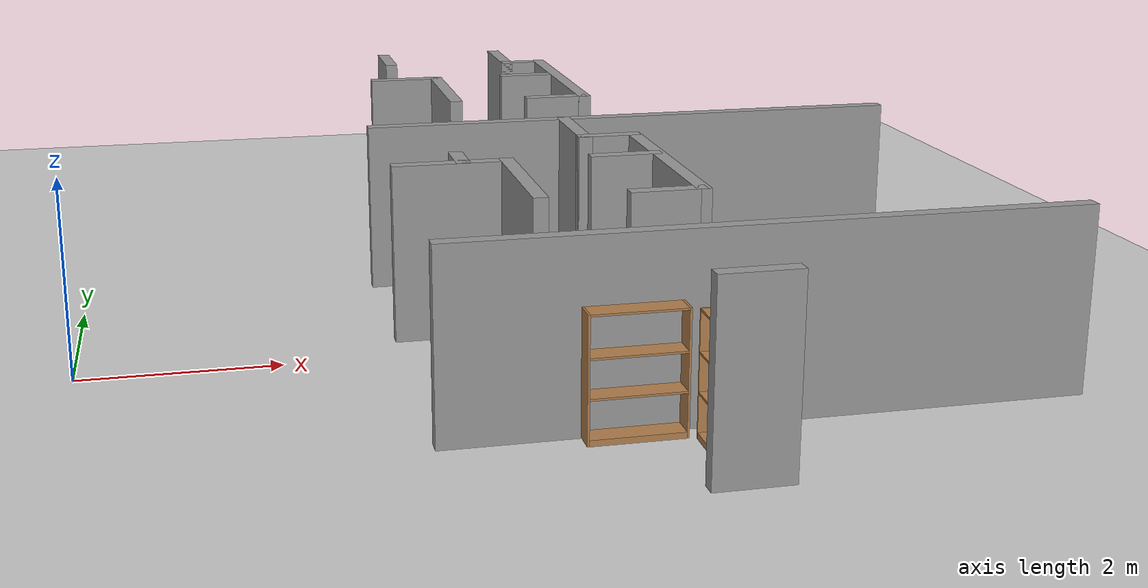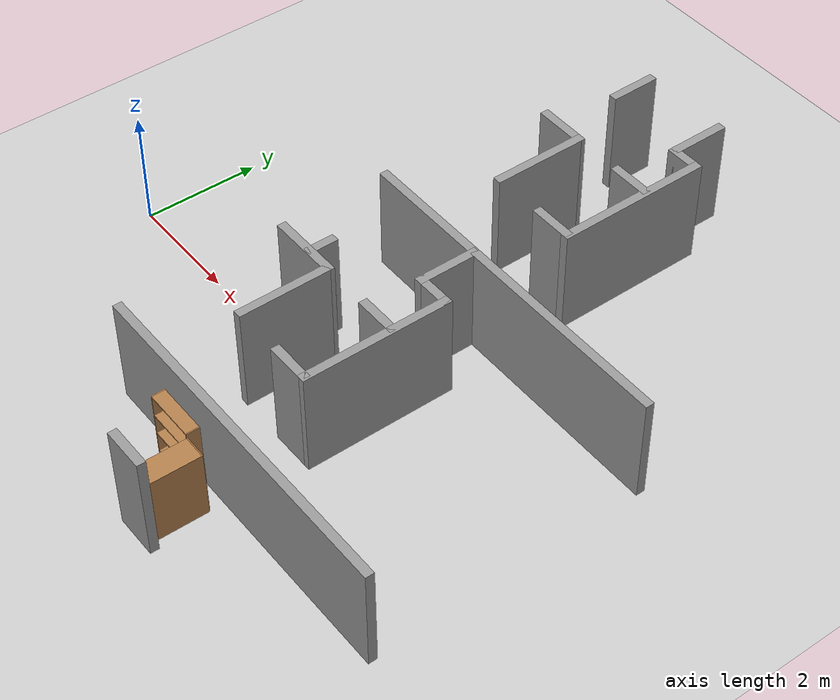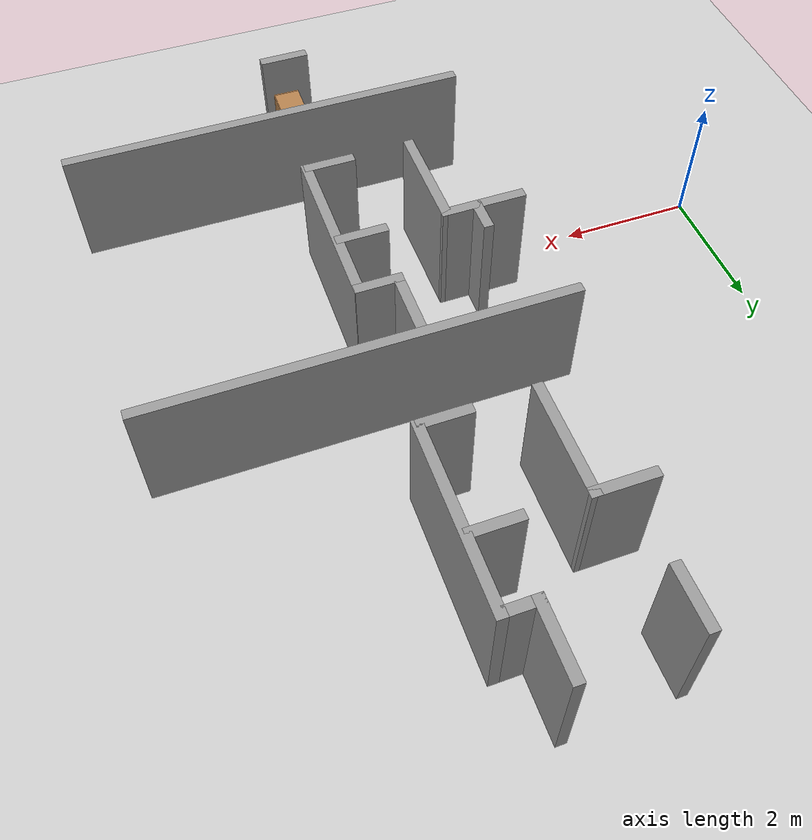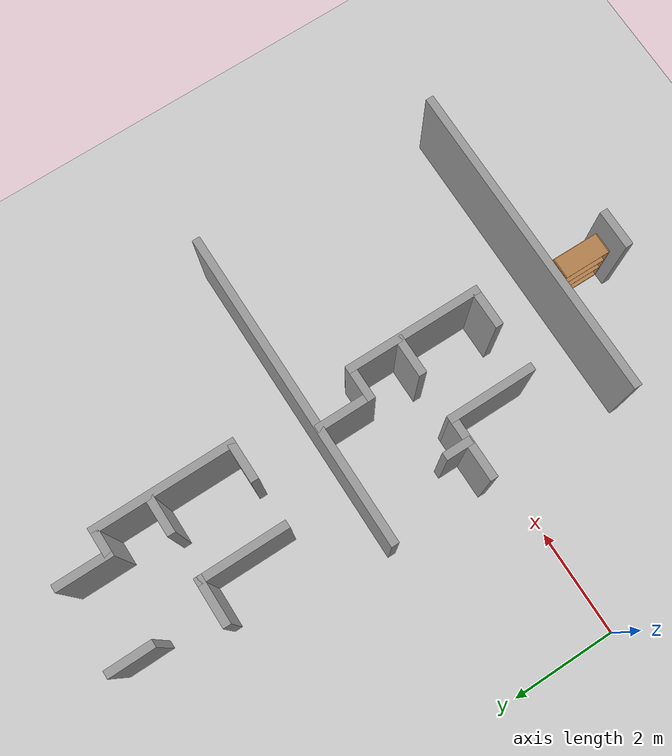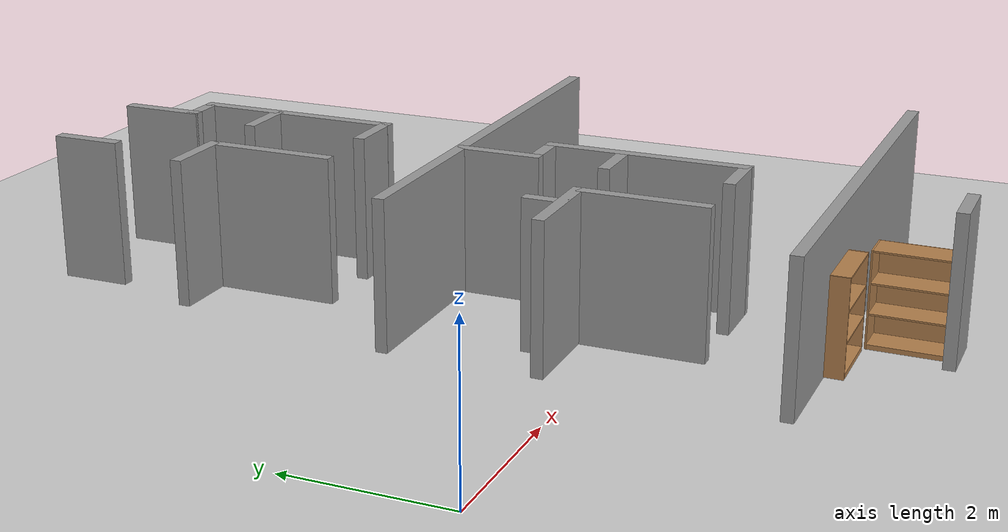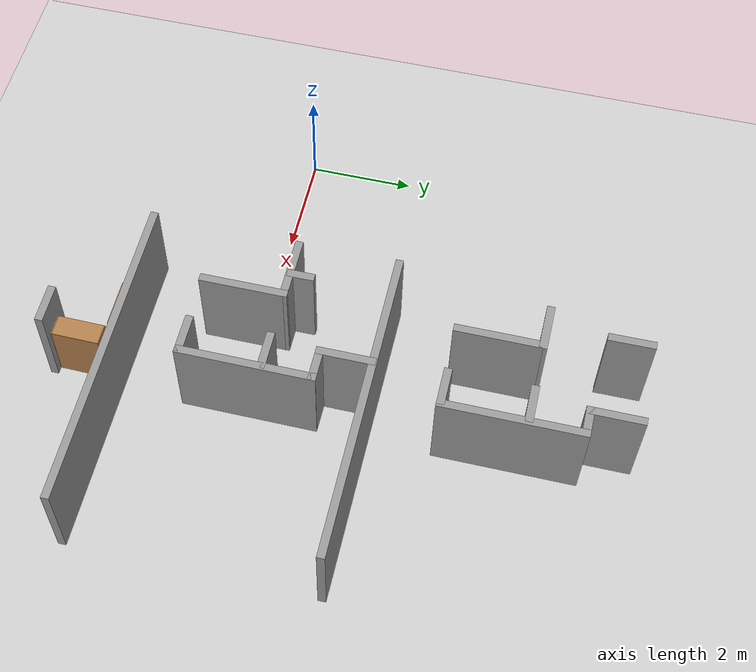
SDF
<sdf version="1.7">
 <world name="default">
  <model name="bookshelf">
   <static>1</static>
   <link name="link">
    <inertial><mass>1</mass></inertial>
    <collision name="back">
     <pose>0 0.005 0.6 0 -0 0</pose>
     <geometry><box><size>0.9 0.01 1.2</size></box></geometry>
    </collision>
    <visual name="visual1">
     <pose>0 0.005 0.6 0 -0 0</pose>
     <geometry><box><size>0.9 0.01 1.2</size></box></geometry>
     <material>
      <script><uri>file://media/materials/scripts/gazebo.material</uri><name>Gazebo/Wood</name></script>
     </material>
    </visual>
    <collision name="left_side">
     <pose>0.45 -0.195 0.6 0 -0 0</pose>
     <geometry><box><size>0.02 0.4 1.2</size></box></geometry>
    </collision>
    <visual name="visual2">
     <pose>0.45 -0.195 0.6 0 -0 0</pose>
     <geometry><box><size>0.02 0.4 1.2</size></box></geometry>
     <material>
      <script><uri>file://media/materials/scripts/gazebo.material</uri><name>Gazebo/Wood</name></script>
     </material>
    </visual>
    <collision name="right_side">
     <pose>-0.45 -0.195 0.6 0 -0 0</pose>
     <geometry><box><size>0.02 0.4 1.2</size></box></geometry>
    </collision>
    <visual name="visual3">
     <pose>-0.45 -0.195 0.6 0 -0 0</pose>
     <geometry><box><size>0.02 0.4 1.2</size></box></geometry>
     <material>
      <script><uri>file://media/materials/scripts/gazebo.material</uri><name>Gazebo/Wood</name></script>
     </material>
    </visual>
    <collision name="bottom">
     <pose>0 -0.195 0.03 0 -0 0</pose>
     <geometry><box><size>0.88 0.4 0.06</size></box></geometry>
    </collision>
    <visual name="visual4">
     <pose>0 -0.195 0.03 0 -0 0</pose>
     <geometry><box><size>0.88 0.4 0.06</size></box></geometry>
     <material>
      <script><uri>file://media/materials/scripts/gazebo.material</uri><name>Gazebo/Wood</name></script>
     </material>
    </visual>
    <collision name="top">
     <pose>0 -0.195 1.19 0 -0 0</pose>
     <geometry><box><size>0.88 0.4 0.02</size></box></geometry>
    </collision>
    <visual name="visual5">
     <pose>0 -0.195 1.19 0 -0 0</pose>
     <geometry><box><size>0.88 0.4 0.02</size></box></geometry>
     <material>
      <script><uri>file://media/materials/scripts/gazebo.material</uri><name>Gazebo/Wood</name></script>
     </material>
    </visual>
    <collision name="low_shelf">
     <pose>0 -0.195 0.43 0 -0 0</pose>
     <geometry><box><size>0.88 0.4 0.02</size></box></geometry>
    </collision>
    <visual name="visual6">
     <pose>0 -0.195 0.43 0 -0 0</pose>
     <geometry><box><size>0.88 0.4 0.02</size></box></geometry>
     <material>
      <script><uri>file://media/materials/scripts/gazebo.material</uri><name>Gazebo/Wood</name></script>
     </material>
    </visual>
    <collision name="high_shelf">
     <pose>0 -0.195 0.8 0 -0 0</pose>
     <geometry><box><size>0.88 0.4 0.02</size></box></geometry>
    </collision>
    <visual name="visual7">
     <pose>0 -0.195 0.8 0 -0 0</pose>
     <geometry><box><size>0.88 0.4 0.02</size></box></geometry>
     <material>
      <script><uri>file://media/materials/scripts/gazebo.material</uri><name>Gazebo/Wood</name></script>
     </material>
    </visual>
   </link>
   <pose>5.80085 -3.089 0 0 0 -1.58126</pose>
  </model>
  <model name="bookshelf_0">
   <link name="link">
    <inertial>
     <mass>0.599067</mass>
     <inertia>
      <ixx>0.00274522</ixx>
      <ixy>0</ixy>
      <ixz>0</ixz>
      <iyy>0.0386797</iyy>
      <iyz>0</iyz>
      <izz>0.041385</izz>
     </inertia>
    </inertial>
    <visual name="visual1">
     <pose>0 0.005 0.6 0 -0 0</pose>
     <geometry><box><size>0.9 0.006791 1.2</size></box></geometry>
     <material>
      <script><uri>file://media/materials/scripts/gazebo.material</uri><name>Gazebo/Wood</name></script>
      <shader type="pixel"/>
     </material>
    </visual>
    <visual name="visual2">
     <pose>0.45 -0.195 0.6 0 -0 0</pose>
     <geometry><box><size>0.02 0.233645 1.2</size></box></geometry>
     <material>
      <script><uri>file://media/materials/scripts/gazebo.material</uri><name>Gazebo/Wood</name></script>
      <shader type="pixel"/>
     </material>
    </visual>
    <visual name="visual3">
     <pose>-0.45 -0.195 0.6 0 -0 0</pose>
     <geometry><box><size>0.02 0.233645 1.2</size></box></geometry>
     <material>
      <script><uri>file://media/materials/scripts/gazebo.material</uri><name>Gazebo/Wood</name></script>
      <shader type="pixel"/>
     </material>
    </visual>
    <visual name="visual4">
     <pose>0 -0.195 0.03 0 -0 0</pose>
     <geometry><box><size>0.88 0.233645 0.06</size></box></geometry>
     <material>
      <script><uri>file://media/materials/scripts/gazebo.material</uri><name>Gazebo/Wood</name></script>
      <shader type="pixel"/>
     </material>
    </visual>
    <visual name="visual5">
     <pose>0 -0.195 1.19 0 -0 0</pose>
     <geometry><box><size>0.88 0.233645 0.02</size></box></geometry>
     <material>
      <script><uri>file://media/materials/scripts/gazebo.material</uri><name>Gazebo/Wood</name></script>
      <shader type="pixel"/>
     </material>
    </visual>
    <visual name="visual6">
     <pose>0 -0.195 0.43 0 -0 0</pose>
     <geometry><box><size>0.88 0.233645 0.02</size></box></geometry>
     <material>
      <script><uri>file://media/materials/scripts/gazebo.material</uri><name>Gazebo/Wood</name></script>
      <shader type="pixel"/>
     </material>
    </visual>
    <visual name="visual7">
     <pose>0 -0.195 0.8 0 -0 0</pose>
     <geometry><box><size>0.88 0.233645 0.02</size></box></geometry>
     <material>
      <script><uri>file://media/materials/scripts/gazebo.material</uri><name>Gazebo/Wood</name></script>
      <shader type="pixel"/>
     </material>
    </visual>
    <collision name="back">
     <pose>0 0.005 0.6 0 -0 0</pose>
     <geometry><box><size>0.9 0.006791 1.2</size></box></geometry>
     <surface>
      <friction>
       <ode><mu>1</mu><mu2>1</mu2><fdir1>0 0 0</fdir1><slip1>0</slip1><slip2>0</slip2></ode>
       <torsional>
        <coefficient>1</coefficient>
        <patch_radius>0</patch_radius>
        <surface_radius>0</surface_radius>
        <use_patch_radius>1</use_patch_radius>
        <ode><slip>0</slip></ode>
       </torsional>
      </friction>
      <bounce><restitution_coefficient>0</restitution_coefficient><threshold>1e+06</threshold></bounce>
      <contact>
       <collide_without_contact>0</collide_without_contact>
       <collide_without_contact_bitmask>1</collide_without_contact_bitmask>
       <collide_bitmask>1</collide_bitmask>
       <ode>
        <soft_cfm>0</soft_cfm>
        <soft_erp>0.2</soft_erp>
        <kp>1e+13</kp>
        <kd>1</kd>
        <max_vel>0.01</max_vel>
        <min_depth>0</min_depth>
       </ode>
       <bullet>
        <split_impulse>1</split_impulse>
        <split_impulse_penetration_threshold>-0.01</split_impulse_penetration_threshold>
        <soft_cfm>0</soft_cfm>
        <soft_erp>0.2</soft_erp>
        <kp>1e+13</kp>
        <kd>1</kd>
       </bullet>
      </contact>
     </surface>
    </collision>
    <collision name="left_side">
     <pose>0.45 -0.195 0.6 0 -0 0</pose>
     <geometry><box><size>0.02 0.233645 1.2</size></box></geometry>
     <surface>
      <friction>
       <ode><mu>1</mu><mu2>1</mu2><fdir1>0 0 0</fdir1><slip1>0</slip1><slip2>0</slip2></ode>
       <torsional>
        <coefficient>1</coefficient>
        <patch_radius>0</patch_radius>
        <surface_radius>0</surface_radius>
        <use_patch_radius>1</use_patch_radius>
        <ode><slip>0</slip></ode>
       </torsional>
      </friction>
      <bounce><restitution_coefficient>0</restitution_coefficient><threshold>1e+06</threshold></bounce>
      <contact>
       <collide_without_contact>0</collide_without_contact>
       <collide_without_contact_bitmask>1</collide_without_contact_bitmask>
       <collide_bitmask>1</collide_bitmask>
       <ode>
        <soft_cfm>0</soft_cfm>
        <soft_erp>0.2</soft_erp>
        <kp>1e+13</kp>
        <kd>1</kd>
        <max_vel>0.01</max_vel>
        <min_depth>0</min_depth>
       </ode>
       <bullet>
        <split_impulse>1</split_impulse>
        <split_impulse_penetration_threshold>-0.01</split_impulse_penetration_threshold>
        <soft_cfm>0</soft_cfm>
        <soft_erp>0.2</soft_erp>
        <kp>1e+13</kp>
        <kd>1</kd>
       </bullet>
      </contact>
     </surface>
    </collision>
    <collision name="right_side">
     <pose>-0.45 -0.195 0.6 0 -0 0</pose>
     <geometry><box><size>0.02 0.233645 1.2</size></box></geometry>
     <surface>
      <friction>
       <ode><mu>1</mu><mu2>1</mu2><fdir1>0 0 0</fdir1><slip1>0</slip1><slip2>0</slip2></ode>
       <torsional>
        <coefficient>1</coefficient>
        <patch_radius>0</patch_radius>
        <surface_radius>0</surface_radius>
        <use_patch_radius>1</use_patch_radius>
        <ode><slip>0</slip></ode>
       </torsional>
      </friction>
      <bounce><restitution_coefficient>0</restitution_coefficient><threshold>1e+06</threshold></bounce>
      <contact>
       <collide_without_contact>0</collide_without_contact>
       <collide_without_contact_bitmask>1</collide_without_contact_bitmask>
       <collide_bitmask>1</collide_bitmask>
       <ode>
        <soft_cfm>0</soft_cfm>
        <soft_erp>0.2</soft_erp>
        <kp>1e+13</kp>
        <kd>1</kd>
        <max_vel>0.01</max_vel>
        <min_depth>0</min_depth>
       </ode>
       <bullet>
        <split_impulse>1</split_impulse>
        <split_impulse_penetration_threshold>-0.01</split_impulse_penetration_threshold>
        <soft_cfm>0</soft_cfm>
        <soft_erp>0.2</soft_erp>
        <kp>1e+13</kp>
        <kd>1</kd>
       </bullet>
      </contact>
     </surface>
    </collision>
    <collision name="bottom">
     <pose>0 -0.195 0.03 0 -0 0</pose>
     <geometry><box><size>0.88 0.233645 0.06</size></box></geometry>
     <surface>
      <friction>
       <ode><mu>1</mu><mu2>1</mu2><fdir1>0 0 0</fdir1><slip1>0</slip1><slip2>0</slip2></ode>
       <torsional>
        <coefficient>1</coefficient>
        <patch_radius>0</patch_radius>
        <surface_radius>0</surface_radius>
        <use_patch_radius>1</use_patch_radius>
        <ode><slip>0</slip></ode>
       </torsional>
      </friction>
      <bounce><restitution_coefficient>0</restitution_coefficient><threshold>1e+06</threshold></bounce>
      <contact>
       <collide_without_contact>0</collide_without_contact>
       <collide_without_contact_bitmask>1</collide_without_contact_bitmask>
       <collide_bitmask>1</collide_bitmask>
       <ode>
        <soft_cfm>0</soft_cfm>
        <soft_erp>0.2</soft_erp>
        <kp>1e+13</kp>
        <kd>1</kd>
        <max_vel>0.01</max_vel>
        <min_depth>0</min_depth>
       </ode>
       <bullet>
        <split_impulse>1</split_impulse>
        <split_impulse_penetration_threshold>-0.01</split_impulse_penetration_threshold>
        <soft_cfm>0</soft_cfm>
        <soft_erp>0.2</soft_erp>
        <kp>1e+13</kp>
        <kd>1</kd>
       </bullet>
      </contact>
     </surface>
    </collision>
    <collision name="top">
     <pose>0 -0.195 1.19 0 -0 0</pose>
     <geometry><box><size>0.88 0.233645 0.02</size></box></geometry>
     <surface>
      <friction>
       <ode><mu>1</mu><mu2>1</mu2><fdir1>0 0 0</fdir1><slip1>0</slip1><slip2>0</slip2></ode>
       <torsional>
        <coefficient>1</coefficient>
        <patch_radius>0</patch_radius>
        <surface_radius>0</surface_radius>
        <use_patch_radius>1</use_patch_radius>
        <ode><slip>0</slip></ode>
       </torsional>
      </friction>
      <bounce><restitution_coefficient>0</restitution_coefficient><threshold>1e+06</threshold></bounce>
      <contact>
       <collide_without_contact>0</collide_without_contact>
       <collide_without_contact_bitmask>1</collide_without_contact_bitmask>
       <collide_bitmask>1</collide_bitmask>
       <ode>
        <soft_cfm>0</soft_cfm>
        <soft_erp>0.2</soft_erp>
        <kp>1e+13</kp>
        <kd>1</kd>
        <max_vel>0.01</max_vel>
        <min_depth>0</min_depth>
       </ode>
       <bullet>
        <split_impulse>1</split_impulse>
        <split_impulse_penetration_threshold>-0.01</split_impulse_penetration_threshold>
        <soft_cfm>0</soft_cfm>
        <soft_erp>0.2</soft_erp>
        <kp>1e+13</kp>
        <kd>1</kd>
       </bullet>
      </contact>
     </surface>
    </collision>
    <collision name="low_shelf">
     <pose>0 -0.195 0.43 0 -0 0</pose>
     <geometry><box><size>0.88 0.233645 0.02</size></box></geometry>
     <surface>
      <friction>
       <ode><mu>1</mu><mu2>1</mu2><fdir1>0 0 0</fdir1><slip1>0</slip1><slip2>0</slip2></ode>
       <torsional>
        <coefficient>1</coefficient>
        <patch_radius>0</patch_radius>
        <surface_radius>0</surface_radius>
        <use_patch_radius>1</use_patch_radius>
        <ode><slip>0</slip></ode>
       </torsional>
      </friction>
      <bounce><restitution_coefficient>0</restitution_coefficient><threshold>1e+06</threshold></bounce>
      <contact>
       <collide_without_contact>0</collide_without_contact>
       <collide_without_contact_bitmask>1</collide_without_contact_bitmask>
       <collide_bitmask>1</collide_bitmask>
       <ode>
        <soft_cfm>0</soft_cfm>
        <soft_erp>0.2</soft_erp>
        <kp>1e+13</kp>
        <kd>1</kd>
        <max_vel>0.01</max_vel>
        <min_depth>0</min_depth>
       </ode>
       <bullet>
        <split_impulse>1</split_impulse>
        <split_impulse_penetration_threshold>-0.01</split_impulse_penetration_threshold>
        <soft_cfm>0</soft_cfm>
        <soft_erp>0.2</soft_erp>
        <kp>1e+13</kp>
        <kd>1</kd>
       </bullet>
      </contact>
     </surface>
    </collision>
    <collision name="high_shelf">
     <pose>0 -0.195 0.8 0 -0 0</pose>
     <geometry><box><size>0.88 0.233645 0.02</size></box></geometry>
     <surface>
      <friction>
       <ode><mu>1</mu><mu2>1</mu2><fdir1>0 0 0</fdir1><slip1>0</slip1><slip2>0</slip2></ode>
       <torsional>
        <coefficient>1</coefficient>
        <patch_radius>0</patch_radius>
        <surface_radius>0</surface_radius>
        <use_patch_radius>1</use_patch_radius>
        <ode><slip>0</slip></ode>
       </torsional>
      </friction>
      <bounce><restitution_coefficient>0</restitution_coefficient><threshold>1e+06</threshold></bounce>
      <contact>
       <collide_without_contact>0</collide_without_contact>
       <collide_without_contact_bitmask>1</collide_without_contact_bitmask>
       <collide_bitmask>1</collide_bitmask>
       <ode>
        <soft_cfm>0</soft_cfm>
        <soft_erp>0.2</soft_erp>
        <kp>1e+13</kp>
        <kd>1</kd>
        <max_vel>0.01</max_vel>
        <min_depth>0</min_depth>
       </ode>
       <bullet>
        <split_impulse>1</split_impulse>
        <split_impulse_penetration_threshold>-0.01</split_impulse_penetration_threshold>
        <soft_cfm>0</soft_cfm>
        <soft_erp>0.2</soft_erp>
        <kp>1e+13</kp>
        <kd>1</kd>
       </bullet>
      </contact>
     </surface>
    </collision>
   </link>
   <static>1</static>
   <pose>4.8873 -2.30096 0 0 -0 0</pose>
  </model>
  <model name="ground_plane">
   <static>1</static>
   <link name="link">
    <collision name="collision">
     <geometry><plane><normal>0 0 1</normal><size>100 100</size></plane></geometry>
     <surface>
      <contact><collide_bitmask>65535</collide_bitmask></contact>
      <friction><ode><mu>100</mu><mu2>50</mu2></ode></friction>
     </surface>
    </collision>
    <visual name="visual">
     <cast_shadows>0</cast_shadows>
     <geometry><plane><normal>0 0 1</normal><size>100 100</size></plane></geometry>
     <material>
      <script><uri>file://media/materials/scripts/gazebo.material</uri><name>Gazebo/Grey</name></script>
     </material>
    </visual>
   </link>
  </model>
  <model name="HQ_0">
   <link name="Wall_139">
    <pose>6.14807 -2.32093 0 0 0 -0.001582</pose>
    <visual name="Wall_139_Visual">
     <pose>0 0 1.25 0 -0 0</pose>
     <geometry><box><size>6.13288 0.15 2</size></box></geometry>
     <material>
      <script><uri>file://media/materials/scripts/gazebo.material</uri><name>Gazebo/Grey</name></script>
      <ambient>1 1 1 1</ambient>
      <shader type="pixel"/>
     </material>
     <meta><layer>0</layer></meta>
    </visual>
    <collision name="Wall_139_Collision">
     <pose>0 0 1.25 0 -0 0</pose>
     <geometry><box><size>6.13288 0.15 2</size></box></geometry>
     <surface>
      <friction>
       <ode><mu>1</mu><mu2>1</mu2><fdir1>0 0 0</fdir1><slip1>0</slip1><slip2>0</slip2></ode>
       <torsional>
        <coefficient>1</coefficient>
        <patch_radius>0</patch_radius>
        <surface_radius>0</surface_radius>
        <use_patch_radius>1</use_patch_radius>
        <ode><slip>0</slip></ode>
       </torsional>
      </friction>
      <bounce><restitution_coefficient>0</restitution_coefficient><threshold>1e+06</threshold></bounce>
      <contact>
       <collide_without_contact>0</collide_without_contact>
       <collide_without_contact_bitmask>1</collide_without_contact_bitmask>
       <collide_bitmask>1</collide_bitmask>
       <ode>
        <soft_cfm>0</soft_cfm>
        <soft_erp>0.2</soft_erp>
        <kp>1e+13</kp>
        <kd>1</kd>
        <max_vel>0.01</max_vel>
        <min_depth>0</min_depth>
       </ode>
       <bullet>
        <split_impulse>1</split_impulse>
        <split_impulse_penetration_threshold>-0.01</split_impulse_penetration_threshold>
        <soft_cfm>0</soft_cfm>
        <soft_erp>0.2</soft_erp>
        <kp>1e+13</kp>
        <kd>1</kd>
       </bullet>
      </contact>
     </surface>
    </collision>
   </link>
   <link name="Wall_148">
    <pose>5.5052 -3.63375 0 0 -0 0</pose>
    <visual name="Wall_148_Visual">
     <pose>0 0 1.25 0 -0 0</pose>
     <geometry><box><size>0.75 0.15 2</size></box></geometry>
     <material>
      <script><uri>file://media/materials/scripts/gazebo.material</uri><name>Gazebo/Grey</name></script>
      <ambient>1 1 1 1</ambient>
      <shader type="pixel"/>
     </material>
     <meta><layer>0</layer></meta>
    </visual>
    <collision name="Wall_148_Collision">
     <pose>0 0 1.25 0 -0 0</pose>
     <geometry><box><size>0.75 0.15 2</size></box></geometry>
     <surface>
      <friction>
       <ode><mu>1</mu><mu2>1</mu2><fdir1>0 0 0</fdir1><slip1>0</slip1><slip2>0</slip2></ode>
       <torsional>
        <coefficient>1</coefficient>
        <patch_radius>0</patch_radius>
        <surface_radius>0</surface_radius>
        <use_patch_radius>1</use_patch_radius>
        <ode><slip>0</slip></ode>
       </torsional>
      </friction>
      <bounce><restitution_coefficient>0</restitution_coefficient><threshold>1e+06</threshold></bounce>
      <contact>
       <collide_without_contact>0</collide_without_contact>
       <collide_without_contact_bitmask>1</collide_without_contact_bitmask>
       <collide_bitmask>1</collide_bitmask>
       <ode>
        <soft_cfm>0</soft_cfm>
        <soft_erp>0.2</soft_erp>
        <kp>1e+13</kp>
        <kd>1</kd>
        <max_vel>0.01</max_vel>
        <min_depth>0</min_depth>
       </ode>
       <bullet>
        <split_impulse>1</split_impulse>
        <split_impulse_penetration_threshold>-0.01</split_impulse_penetration_threshold>
        <soft_cfm>0</soft_cfm>
        <soft_erp>0.2</soft_erp>
        <kp>1e+13</kp>
        <kd>1</kd>
       </bullet>
      </contact>
     </surface>
    </collision>
   </link>
   <link name="Wall_177">
    <pose>6.14231 2.4172 0 0 0 -0.00074</pose>
    <visual name="Wall_177_Visual">
     <pose>0 0 1.25 0 -0 0</pose>
     <geometry><box><size>6.10576 0.15 2</size></box></geometry>
     <material>
      <script><uri>file://media/materials/scripts/gazebo.material</uri><name>Gazebo/Grey</name></script>
      <ambient>1 1 1 1</ambient>
      <shader type="pixel"/>
     </material>
     <meta><layer>0</layer></meta>
    </visual>
    <collision name="Wall_177_Collision">
     <pose>0 0 1.25 0 -0 0</pose>
     <geometry><box><size>6.10576 0.15 2</size></box></geometry>
     <surface>
      <friction>
       <ode><mu>1</mu><mu2>1</mu2><fdir1>0 0 0</fdir1><slip1>0</slip1><slip2>0</slip2></ode>
       <torsional>
        <coefficient>1</coefficient>
        <patch_radius>0</patch_radius>
        <surface_radius>0</surface_radius>
        <use_patch_radius>1</use_patch_radius>
        <ode><slip>0</slip></ode>
       </torsional>
      </friction>
      <bounce><restitution_coefficient>0</restitution_coefficient><threshold>1e+06</threshold></bounce>
      <contact>
       <collide_without_contact>0</collide_without_contact>
       <collide_without_contact_bitmask>1</collide_without_contact_bitmask>
       <collide_bitmask>1</collide_bitmask>
       <ode>
        <soft_cfm>0</soft_cfm>
        <soft_erp>0.2</soft_erp>
        <kp>1e+13</kp>
        <kd>1</kd>
        <max_vel>0.01</max_vel>
        <min_depth>0</min_depth>
       </ode>
       <bullet>
        <split_impulse>1</split_impulse>
        <split_impulse_penetration_threshold>-0.01</split_impulse_penetration_threshold>
        <soft_cfm>0</soft_cfm>
        <soft_erp>0.2</soft_erp>
        <kp>1e+13</kp>
        <kd>1</kd>
       </bullet>
      </contact>
     </surface>
    </collision>
   </link>
   <link name="Wall_187">
    <pose>5.88896 0.21866 0 0 -0 1.56805</pose>
    <inertial>
     <inertia><ixx>0</ixx><ixy>0</ixy><ixz>0</ixz><iyy>0</iyy><iyz>0</iyz><izz>0</izz></inertia>
     <mass>0</mass>
    </inertial>
    <visual name="Wall_187_Visual">
     <pose>0 0 1.25 0 -0 0</pose>
     <geometry><box><size>2.60562 0.15 2</size></box></geometry>
     <material>
      <script><uri>file://media/materials/scripts/gazebo.material</uri><name>Gazebo/Grey</name></script>
      <ambient>1 1 1 1</ambient>
      <shader type="pixel"/>
     </material>
     <meta><layer>0</layer></meta>
    </visual>
    <collision name="Wall_187_Collision">
     <pose>0 0 1.25 0 -0 0</pose>
     <geometry><box><size>2.60562 0.15 2</size></box></geometry>
     <surface>
      <friction>
       <ode><mu>1</mu><mu2>1</mu2><fdir1>0 0 0</fdir1><slip1>0</slip1><slip2>0</slip2></ode>
       <torsional>
        <coefficient>1</coefficient>
        <patch_radius>0</patch_radius>
        <surface_radius>0</surface_radius>
        <use_patch_radius>1</use_patch_radius>
        <ode><slip>0</slip></ode>
       </torsional>
      </friction>
      <bounce><restitution_coefficient>0</restitution_coefficient><threshold>1e+06</threshold></bounce>
      <contact>
       <collide_without_contact>0</collide_without_contact>
       <collide_without_contact_bitmask>1</collide_without_contact_bitmask>
       <collide_bitmask>1</collide_bitmask>
       <ode>
        <soft_cfm>0</soft_cfm>
        <soft_erp>0.2</soft_erp>
        <kp>1e+13</kp>
        <kd>1</kd>
        <max_vel>0.01</max_vel>
        <min_depth>0</min_depth>
       </ode>
       <bullet>
        <split_impulse>1</split_impulse>
        <split_impulse_penetration_threshold>-0.01</split_impulse_penetration_threshold>
        <soft_cfm>0</soft_cfm>
        <soft_erp>0.2</soft_erp>
        <kp>1e+13</kp>
        <kd>1</kd>
       </bullet>
      </contact>
     </surface>
    </collision>
   </link>
   <link name="Wall_198">
    <pose>3.74081 0.511977 0 0 -0 0</pose>
    <visual name="Wall_198_Visual">
     <pose>0 0 1.25 0 -0 0</pose>
     <geometry><box><size>1.2655 0.15 2</size></box></geometry>
     <material>
      <script><uri>file://media/materials/scripts/gazebo.material</uri><name>Gazebo/Grey</name></script>
      <ambient>1 1 1 1</ambient>
      <shader type="pixel"/>
     </material>
     <meta><layer>0</layer></meta>
    </visual>
    <collision name="Wall_198_Collision">
     <pose>0 0 1.25 0 -0 0</pose>
     <geometry><box><size>1.2655 0.15 2</size></box></geometry>
     <surface>
      <friction>
       <ode><mu>1</mu><mu2>1</mu2><fdir1>0 0 0</fdir1><slip1>0</slip1><slip2>0</slip2></ode>
       <torsional>
        <coefficient>1</coefficient>
        <patch_radius>0</patch_radius>
        <surface_radius>0</surface_radius>
        <use_patch_radius>1</use_patch_radius>
        <ode><slip>0</slip></ode>
       </torsional>
      </friction>
      <bounce><restitution_coefficient>0</restitution_coefficient><threshold>1e+06</threshold></bounce>
      <contact>
       <collide_without_contact>0</collide_without_contact>
       <collide_without_contact_bitmask>1</collide_without_contact_bitmask>
       <collide_bitmask>1</collide_bitmask>
       <ode>
        <soft_cfm>0</soft_cfm>
        <soft_erp>0.2</soft_erp>
        <kp>1e+13</kp>
        <kd>1</kd>
        <max_vel>0.01</max_vel>
        <min_depth>0</min_depth>
       </ode>
       <bullet>
        <split_impulse>1</split_impulse>
        <split_impulse_penetration_threshold>-0.01</split_impulse_penetration_threshold>
        <soft_cfm>0</soft_cfm>
        <soft_erp>0.2</soft_erp>
        <kp>1e+13</kp>
        <kd>1</kd>
       </bullet>
      </contact>
     </surface>
    </collision>
   </link>
   <link name="Wall_202">
    <pose>4.29995 -0.246283 0 0 0 -1.56896</pose>
    <visual name="Wall_202_Visual">
     <pose>0 0 1.25 0 -0 0</pose>
     <geometry><box><size>1.66652 0.15 2</size></box></geometry>
     <material>
      <script><uri>file://media/materials/scripts/gazebo.material</uri><name>Gazebo/Grey</name></script>
      <ambient>1 1 1 1</ambient>
      <shader type="pixel"/>
     </material>
     <meta><layer>0</layer></meta>
    </visual>
    <collision name="Wall_202_Collision">
     <pose>0 0 1.25 0 -0 0</pose>
     <geometry><box><size>1.66652 0.15 2</size></box></geometry>
     <surface>
      <friction>
       <ode><mu>1</mu><mu2>1</mu2><fdir1>0 0 0</fdir1><slip1>0</slip1><slip2>0</slip2></ode>
       <torsional>
        <coefficient>1</coefficient>
        <patch_radius>0</patch_radius>
        <surface_radius>0</surface_radius>
        <use_patch_radius>1</use_patch_radius>
        <ode><slip>0</slip></ode>
       </torsional>
      </friction>
      <bounce><restitution_coefficient>0</restitution_coefficient><threshold>1e+06</threshold></bounce>
      <contact>
       <collide_without_contact>0</collide_without_contact>
       <collide_without_contact_bitmask>1</collide_without_contact_bitmask>
       <collide_bitmask>1</collide_bitmask>
       <ode>
        <soft_cfm>0</soft_cfm>
        <soft_erp>0.2</soft_erp>
        <kp>1e+13</kp>
        <kd>1</kd>
        <max_vel>0.01</max_vel>
        <min_depth>0</min_depth>
       </ode>
       <bullet>
        <split_impulse>1</split_impulse>
        <split_impulse_penetration_threshold>-0.01</split_impulse_penetration_threshold>
        <soft_cfm>0</soft_cfm>
        <soft_erp>0.2</soft_erp>
        <kp>1e+13</kp>
        <kd>1</kd>
       </bullet>
      </contact>
     </surface>
    </collision>
   </link>
   <link name="Wall_205">
    <pose>3.83822 0.719294 0 0 0 -1.5708</pose>
    <visual name="Wall_205_Visual">
     <pose>0 0 1.25 0 -0 0</pose>
     <geometry><box><size>0.52164 0.15 2</size></box></geometry>
     <material>
      <script><uri>file://media/materials/scripts/gazebo.material</uri><name>Gazebo/Grey</name></script>
      <ambient>1 1 1 1</ambient>
      <shader type="pixel"/>
     </material>
     <meta><layer>0</layer></meta>
    </visual>
    <collision name="Wall_205_Collision">
     <pose>0 0 1.25 0 -0 0</pose>
     <geometry><box><size>0.52164 0.15 2</size></box></geometry>
     <surface>
      <friction>
       <ode><mu>1</mu><mu2>1</mu2><fdir1>0 0 0</fdir1><slip1>0</slip1><slip2>0</slip2></ode>
       <torsional>
        <coefficient>1</coefficient>
        <patch_radius>0</patch_radius>
        <surface_radius>0</surface_radius>
        <use_patch_radius>1</use_patch_radius>
        <ode><slip>0</slip></ode>
       </torsional>
      </friction>
      <bounce><restitution_coefficient>0</restitution_coefficient><threshold>1e+06</threshold></bounce>
      <contact>
       <collide_without_contact>0</collide_without_contact>
       <collide_without_contact_bitmask>1</collide_without_contact_bitmask>
       <collide_bitmask>1</collide_bitmask>
       <ode>
        <soft_cfm>0</soft_cfm>
        <soft_erp>0.2</soft_erp>
        <kp>1e+13</kp>
        <kd>1</kd>
        <max_vel>0.01</max_vel>
        <min_depth>0</min_depth>
       </ode>
       <bullet>
        <split_impulse>1</split_impulse>
        <split_impulse_penetration_threshold>-0.01</split_impulse_penetration_threshold>
        <soft_cfm>0</soft_cfm>
        <soft_erp>0.2</soft_erp>
        <kp>1e+13</kp>
        <kd>1</kd>
       </bullet>
      </contact>
     </surface>
    </collision>
   </link>
   <link name="Wall_209">
    <pose>5.5449 0.510604 0 0 -0 0</pose>
    <visual name="Wall_209_Visual">
     <pose>0 0 1.25 0 -0 0</pose>
     <geometry><box><size>0.761883 0.15 2</size></box></geometry>
     <material>
      <script><uri>file://media/materials/scripts/gazebo.material</uri><name>Gazebo/Grey</name></script>
      <ambient>1 1 1 1</ambient>
      <shader type="pixel"/>
     </material>
     <meta><layer>0</layer></meta>
    </visual>
    <collision name="Wall_209_Collision">
     <pose>0 0 1.25 0 -0 0</pose>
     <geometry><box><size>0.761883 0.15 2</size></box></geometry>
     <surface>
      <friction>
       <ode><mu>1</mu><mu2>1</mu2><fdir1>0 0 0</fdir1><slip1>0</slip1><slip2>0</slip2></ode>
       <torsional>
        <coefficient>1</coefficient>
        <patch_radius>0</patch_radius>
        <surface_radius>0</surface_radius>
        <use_patch_radius>1</use_patch_radius>
        <ode><slip>0</slip></ode>
       </torsional>
      </friction>
      <bounce><restitution_coefficient>0</restitution_coefficient><threshold>1e+06</threshold></bounce>
      <contact>
       <collide_without_contact>0</collide_without_contact>
       <collide_without_contact_bitmask>1</collide_without_contact_bitmask>
       <collide_bitmask>1</collide_bitmask>
       <ode>
        <soft_cfm>0</soft_cfm>
        <soft_erp>0.2</soft_erp>
        <kp>1e+13</kp>
        <kd>1</kd>
        <max_vel>0.01</max_vel>
        <min_depth>0</min_depth>
       </ode>
       <bullet>
        <split_impulse>1</split_impulse>
        <split_impulse_penetration_threshold>-0.01</split_impulse_penetration_threshold>
        <soft_cfm>0</soft_cfm>
        <soft_erp>0.2</soft_erp>
        <kp>1e+13</kp>
        <kd>1</kd>
       </bullet>
      </contact>
     </surface>
    </collision>
   </link>
   <link name="Wall_209_clone">
    <pose>5.54342 -1.00905 0 0 -0 0</pose>
    <visual name="Wall_209_Visual">
     <pose>0 0 1.25 0 -0 0</pose>
     <geometry><box><size>0.761883 0.15 2</size></box></geometry>
     <material>
      <script><uri>file://media/materials/scripts/gazebo.material</uri><name>Gazebo/Grey</name></script>
      <ambient>1 1 1 1</ambient>
      <shader type="pixel"/>
     </material>
     <meta><layer>0</layer></meta>
    </visual>
    <collision name="Wall_209_Collision">
     <pose>0 0 1.25 0 -0 0</pose>
     <geometry><box><size>0.761883 0.15 2</size></box></geometry>
     <surface>
      <friction>
       <ode><mu>1</mu><mu2>1</mu2><fdir1>0 0 0</fdir1><slip1>0</slip1><slip2>0</slip2></ode>
       <torsional>
        <coefficient>1</coefficient>
        <patch_radius>0</patch_radius>
        <surface_radius>0</surface_radius>
        <use_patch_radius>1</use_patch_radius>
        <ode><slip>0</slip></ode>
       </torsional>
      </friction>
      <bounce><restitution_coefficient>0</restitution_coefficient><threshold>1e+06</threshold></bounce>
      <contact>
       <collide_without_contact>0</collide_without_contact>
       <collide_without_contact_bitmask>1</collide_without_contact_bitmask>
       <collide_bitmask>1</collide_bitmask>
       <ode>
        <soft_cfm>0</soft_cfm>
        <soft_erp>0.2</soft_erp>
        <kp>1e+13</kp>
        <kd>1</kd>
        <max_vel>0.01</max_vel>
        <min_depth>0</min_depth>
       </ode>
       <bullet>
        <split_impulse>1</split_impulse>
        <split_impulse_penetration_threshold>-0.01</split_impulse_penetration_threshold>
        <soft_cfm>0</soft_cfm>
        <soft_erp>0.2</soft_erp>
        <kp>1e+13</kp>
        <kd>1</kd>
       </bullet>
      </contact>
     </surface>
    </collision>
   </link>
   <link name="Wall_213">
    <pose>5.88934 5.02004 0 0 -0 1.57131</pose>
    <inertial>
     <inertia><ixx>0</ixx><ixy>0</ixy><ixz>0</ixz><iyy>0</iyy><iyz>0</iyz><izz>0</izz></inertia>
     <mass>0</mass>
    </inertial>
    <visual name="Wall_213_Visual">
     <pose>0 0 1.25 0 -0 0</pose>
     <geometry><box><size>2.70705 0.15 2</size></box></geometry>
     <material>
      <script><uri>file://media/materials/scripts/gazebo.material</uri><name>Gazebo/Grey</name></script>
      <ambient>1 1 1 1</ambient>
      <shader type="pixel"/>
     </material>
     <meta><layer>0</layer></meta>
    </visual>
    <collision name="Wall_213_Collision">
     <pose>0 0 1.25 0 -0 0</pose>
     <geometry><box><size>2.70705 0.15 2</size></box></geometry>
     <surface>
      <friction>
       <ode><mu>1</mu><mu2>1</mu2><fdir1>0 0 0</fdir1><slip1>0</slip1><slip2>0</slip2></ode>
       <torsional>
        <coefficient>1</coefficient>
        <patch_radius>0</patch_radius>
        <surface_radius>0</surface_radius>
        <use_patch_radius>1</use_patch_radius>
        <ode><slip>0</slip></ode>
       </torsional>
      </friction>
      <bounce><restitution_coefficient>0</restitution_coefficient><threshold>1e+06</threshold></bounce>
      <contact>
       <collide_without_contact>0</collide_without_contact>
       <collide_without_contact_bitmask>1</collide_without_contact_bitmask>
       <collide_bitmask>1</collide_bitmask>
       <ode>
        <soft_cfm>0</soft_cfm>
        <soft_erp>0.2</soft_erp>
        <kp>1e+13</kp>
        <kd>1</kd>
        <max_vel>0.01</max_vel>
        <min_depth>0</min_depth>
       </ode>
       <bullet>
        <split_impulse>1</split_impulse>
        <split_impulse_penetration_threshold>-0.01</split_impulse_penetration_threshold>
        <soft_cfm>0</soft_cfm>
        <soft_erp>0.2</soft_erp>
        <kp>1e+13</kp>
        <kd>1</kd>
       </bullet>
      </contact>
     </surface>
    </collision>
   </link>
   <link name="Wall_222">
    <pose>4.30023 4.51838 0 0 -0 1.5708</pose>
    <visual name="Wall_222_Visual">
     <pose>0 0 1.25 0 -0 0</pose>
     <geometry><box><size>1.71003 0.15 2</size></box></geometry>
     <material>
      <script><uri>file://media/materials/scripts/gazebo.material</uri><name>Gazebo/Grey</name></script>
      <ambient>1 1 1 1</ambient>
      <shader type="pixel"/>
     </material>
     <meta><layer>0</layer></meta>
    </visual>
    <collision name="Wall_222_Collision">
     <pose>0 0 1.25 0 -0 0</pose>
     <geometry><box><size>1.71003 0.15 2</size></box></geometry>
     <surface>
      <friction>
       <ode><mu>1</mu><mu2>1</mu2><fdir1>0 0 0</fdir1><slip1>0</slip1><slip2>0</slip2></ode>
       <torsional>
        <coefficient>1</coefficient>
        <patch_radius>0</patch_radius>
        <surface_radius>0</surface_radius>
        <use_patch_radius>1</use_patch_radius>
        <ode><slip>0</slip></ode>
       </torsional>
      </friction>
      <bounce><restitution_coefficient>0</restitution_coefficient><threshold>1e+06</threshold></bounce>
      <contact>
       <collide_without_contact>0</collide_without_contact>
       <collide_without_contact_bitmask>1</collide_without_contact_bitmask>
       <collide_bitmask>1</collide_bitmask>
       <ode>
        <soft_cfm>0</soft_cfm>
        <soft_erp>0.2</soft_erp>
        <kp>1e+13</kp>
        <kd>1</kd>
        <max_vel>0.01</max_vel>
        <min_depth>0</min_depth>
       </ode>
       <bullet>
        <split_impulse>1</split_impulse>
        <split_impulse_penetration_threshold>-0.01</split_impulse_penetration_threshold>
        <soft_cfm>0</soft_cfm>
        <soft_erp>0.2</soft_erp>
        <kp>1e+13</kp>
        <kd>1</kd>
       </bullet>
      </contact>
     </surface>
    </collision>
   </link>
   <link name="Wall_224">
    <pose>3.91789 5.30063 0 0 0 -0.005876</pose>
    <visual name="Wall_224_Visual">
     <pose>0 0 1.25 0 -0 0</pose>
     <geometry><box><size>0.914701 0.15 2</size></box></geometry>
     <material>
      <script><uri>file://media/materials/scripts/gazebo.material</uri><name>Gazebo/Grey</name></script>
      <ambient>1 1 1 1</ambient>
      <shader type="pixel"/>
     </material>
     <meta><layer>0</layer></meta>
    </visual>
    <collision name="Wall_224_Collision">
     <pose>0 0 1.25 0 -0 0</pose>
     <geometry><box><size>0.914701 0.15 2</size></box></geometry>
     <surface>
      <friction>
       <ode><mu>1</mu><mu2>1</mu2><fdir1>0 0 0</fdir1><slip1>0</slip1><slip2>0</slip2></ode>
       <torsional>
        <coefficient>1</coefficient>
        <patch_radius>0</patch_radius>
        <surface_radius>0</surface_radius>
        <use_patch_radius>1</use_patch_radius>
        <ode><slip>0</slip></ode>
       </torsional>
      </friction>
      <bounce><restitution_coefficient>0</restitution_coefficient><threshold>1e+06</threshold></bounce>
      <contact>
       <collide_without_contact>0</collide_without_contact>
       <collide_without_contact_bitmask>1</collide_without_contact_bitmask>
       <collide_bitmask>1</collide_bitmask>
       <ode>
        <soft_cfm>0</soft_cfm>
        <soft_erp>0.2</soft_erp>
        <kp>1e+13</kp>
        <kd>1</kd>
        <max_vel>0.01</max_vel>
        <min_depth>0</min_depth>
       </ode>
       <bullet>
        <split_impulse>1</split_impulse>
        <split_impulse_penetration_threshold>-0.01</split_impulse_penetration_threshold>
        <soft_cfm>0</soft_cfm>
        <soft_erp>0.2</soft_erp>
        <kp>1e+13</kp>
        <kd>1</kd>
       </bullet>
      </contact>
     </surface>
    </collision>
   </link>
   <link name="Wall_230">
    <pose>5.53023 5.29838 0 0 -0 0</pose>
    <visual name="Wall_230_Visual">
     <pose>0 0 1.25 0 -0 0</pose>
     <geometry><box><size>0.75 0.15 2</size></box></geometry>
     <material>
      <script><uri>file://media/materials/scripts/gazebo.material</uri><name>Gazebo/Grey</name></script>
      <ambient>1 1 1 1</ambient>
      <shader type="pixel"/>
     </material>
     <meta><layer>0</layer></meta>
    </visual>
    <collision name="Wall_230_Collision">
     <pose>0 0 1.25 0 -0 0</pose>
     <geometry><box><size>0.75 0.15 2</size></box></geometry>
     <surface>
      <friction>
       <ode><mu>1</mu><mu2>1</mu2><fdir1>0 0 0</fdir1><slip1>0</slip1><slip2>0</slip2></ode>
       <torsional>
        <coefficient>1</coefficient>
        <patch_radius>0</patch_radius>
        <surface_radius>0</surface_radius>
        <use_patch_radius>1</use_patch_radius>
        <ode><slip>0</slip></ode>
       </torsional>
      </friction>
      <bounce><restitution_coefficient>0</restitution_coefficient><threshold>1e+06</threshold></bounce>
      <contact>
       <collide_without_contact>0</collide_without_contact>
       <collide_without_contact_bitmask>1</collide_without_contact_bitmask>
       <collide_bitmask>1</collide_bitmask>
       <ode>
        <soft_cfm>0</soft_cfm>
        <soft_erp>0.2</soft_erp>
        <kp>1e+13</kp>
        <kd>1</kd>
        <max_vel>0.01</max_vel>
        <min_depth>0</min_depth>
       </ode>
       <bullet>
        <split_impulse>1</split_impulse>
        <split_impulse_penetration_threshold>-0.01</split_impulse_penetration_threshold>
        <soft_cfm>0</soft_cfm>
        <soft_erp>0.2</soft_erp>
        <kp>1e+13</kp>
        <kd>1</kd>
       </bullet>
      </contact>
     </surface>
    </collision>
   </link>
   <link name="Wall_230_clone">
    <pose>5.54219 3.74195 0 0 -0 0</pose>
    <visual name="Wall_230_Visual">
     <pose>0 0 1.25 0 -0 0</pose>
     <geometry><box><size>0.75 0.15 2</size></box></geometry>
     <material>
      <script><uri>file://media/materials/scripts/gazebo.material</uri><name>Gazebo/Grey</name></script>
      <ambient>1 1 1 1</ambient>
      <shader type="pixel"/>
     </material>
     <meta><layer>0</layer></meta>
    </visual>
    <collision name="Wall_230_Collision">
     <pose>0 0 1.25 0 -0 0</pose>
     <geometry><box><size>0.75 0.15 2</size></box></geometry>
     <surface>
      <friction>
       <ode><mu>1</mu><mu2>1</mu2><fdir1>0 0 0</fdir1><slip1>0</slip1><slip2>0</slip2></ode>
       <torsional>
        <coefficient>1</coefficient>
        <patch_radius>0</patch_radius>
        <surface_radius>0</surface_radius>
        <use_patch_radius>1</use_patch_radius>
        <ode><slip>0</slip></ode>
       </torsional>
      </friction>
      <bounce><restitution_coefficient>0</restitution_coefficient><threshold>1e+06</threshold></bounce>
      <contact>
       <collide_without_contact>0</collide_without_contact>
       <collide_without_contact_bitmask>1</collide_without_contact_bitmask>
       <collide_bitmask>1</collide_bitmask>
       <ode>
        <soft_cfm>0</soft_cfm>
        <soft_erp>0.2</soft_erp>
        <kp>1e+13</kp>
        <kd>1</kd>
        <max_vel>0.01</max_vel>
        <min_depth>0</min_depth>
       </ode>
       <bullet>
        <split_impulse>1</split_impulse>
        <split_impulse_penetration_threshold>-0.01</split_impulse_penetration_threshold>
        <soft_cfm>0</soft_cfm>
        <soft_erp>0.2</soft_erp>
        <kp>1e+13</kp>
        <kd>1</kd>
       </bullet>
      </contact>
     </surface>
    </collision>
   </link>
   <link name="Wall_232">
    <pose>5.43023 6.75838 0 0 0 -1.5708</pose>
    <visual name="Wall_232_Visual">
     <pose>0 0 1.25 0 -0 0</pose>
     <geometry><box><size>1.07 0.15 2</size></box></geometry>
     <material>
      <script><uri>file://media/materials/scripts/gazebo.material</uri><name>Gazebo/Grey</name></script>
      <ambient>1 1 1 1</ambient>
      <shader type="pixel"/>
     </material>
     <meta><layer>0</layer></meta>
    </visual>
    <collision name="Wall_232_Collision">
     <pose>0 0 1.25 0 -0 0</pose>
     <geometry><box><size>1.07 0.15 2</size></box></geometry>
     <surface>
      <friction>
       <ode><mu>1</mu><mu2>1</mu2><fdir1>0 0 0</fdir1><slip1>0</slip1><slip2>0</slip2></ode>
       <torsional>
        <coefficient>1</coefficient>
        <patch_radius>0</patch_radius>
        <surface_radius>0</surface_radius>
        <use_patch_radius>1</use_patch_radius>
        <ode><slip>0</slip></ode>
       </torsional>
      </friction>
      <bounce><restitution_coefficient>0</restitution_coefficient><threshold>1e+06</threshold></bounce>
      <contact>
       <collide_without_contact>0</collide_without_contact>
       <collide_without_contact_bitmask>1</collide_without_contact_bitmask>
       <collide_bitmask>1</collide_bitmask>
       <ode>
        <soft_cfm>0</soft_cfm>
        <soft_erp>0.2</soft_erp>
        <kp>1e+13</kp>
        <kd>1</kd>
        <max_vel>0.01</max_vel>
        <min_depth>0</min_depth>
       </ode>
       <bullet>
        <split_impulse>1</split_impulse>
        <split_impulse_penetration_threshold>-0.01</split_impulse_penetration_threshold>
        <soft_cfm>0</soft_cfm>
        <soft_erp>0.2</soft_erp>
        <kp>1e+13</kp>
        <kd>1</kd>
       </bullet>
      </contact>
     </surface>
    </collision>
   </link>
   <link name="Wall_233">
    <pose>5.60523 6.29838 0 0 -0 0</pose>
    <visual name="Wall_233_Visual">
     <pose>0 0 1.25 0 -0 0</pose>
     <geometry><box><size>0.5 0.15 2</size></box></geometry>
     <material>
      <script><uri>file://media/materials/scripts/gazebo.material</uri><name>Gazebo/Grey</name></script>
      <ambient>1 1 1 1</ambient>
      <shader type="pixel"/>
     </material>
     <meta><layer>0</layer></meta>
    </visual>
    <collision name="Wall_233_Collision">
     <pose>0 0 1.25 0 -0 0</pose>
     <geometry><box><size>0.5 0.15 2</size></box></geometry>
     <surface>
      <friction>
       <ode><mu>1</mu><mu2>1</mu2><fdir1>0 0 0</fdir1><slip1>0</slip1><slip2>0</slip2></ode>
       <torsional>
        <coefficient>1</coefficient>
        <patch_radius>0</patch_radius>
        <surface_radius>0</surface_radius>
        <use_patch_radius>1</use_patch_radius>
        <ode><slip>0</slip></ode>
       </torsional>
      </friction>
      <bounce><restitution_coefficient>0</restitution_coefficient><threshold>1e+06</threshold></bounce>
      <contact>
       <collide_without_contact>0</collide_without_contact>
       <collide_without_contact_bitmask>1</collide_without_contact_bitmask>
       <collide_bitmask>1</collide_bitmask>
       <ode>
        <soft_cfm>0</soft_cfm>
        <soft_erp>0.2</soft_erp>
        <kp>1e+13</kp>
        <kd>1</kd>
        <max_vel>0.01</max_vel>
        <min_depth>0</min_depth>
       </ode>
       <bullet>
        <split_impulse>1</split_impulse>
        <split_impulse_penetration_threshold>-0.01</split_impulse_penetration_threshold>
        <soft_cfm>0</soft_cfm>
        <soft_erp>0.2</soft_erp>
        <kp>1e+13</kp>
        <kd>1</kd>
       </bullet>
      </contact>
     </surface>
    </collision>
   </link>
   <link name="Wall_261">
    <pose>3.85743 6.82511 0 0 -0 1.57867</pose>
    <visual name="Wall_261_Visual">
     <pose>0 0 1.25 0 -0 0</pose>
     <geometry><box><size>0.876329 0.15 2</size></box></geometry>
     <material>
      <script><uri>file://media/materials/scripts/gazebo.material</uri><name>Gazebo/Grey</name></script>
      <ambient>1 1 1 1</ambient>
      <shader type="pixel"/>
     </material>
     <meta><layer>0</layer></meta>
    </visual>
    <collision name="Wall_261_Collision">
     <pose>0 0 1.25 0 -0 0</pose>
     <geometry><box><size>0.876329 0.15 2</size></box></geometry>
     <surface>
      <friction>
       <ode><mu>1</mu><mu2>1</mu2><fdir1>0 0 0</fdir1><slip1>0</slip1><slip2>0</slip2></ode>
       <torsional>
        <coefficient>1</coefficient>
        <patch_radius>0</patch_radius>
        <surface_radius>0</surface_radius>
        <use_patch_radius>1</use_patch_radius>
        <ode><slip>0</slip></ode>
       </torsional>
      </friction>
      <bounce><restitution_coefficient>0</restitution_coefficient><threshold>1e+06</threshold></bounce>
      <contact>
       <collide_without_contact>0</collide_without_contact>
       <collide_without_contact_bitmask>1</collide_without_contact_bitmask>
       <collide_bitmask>1</collide_bitmask>
       <ode>
        <soft_cfm>0</soft_cfm>
        <soft_erp>0.2</soft_erp>
        <kp>1e+13</kp>
        <kd>1</kd>
        <max_vel>0.01</max_vel>
        <min_depth>0</min_depth>
       </ode>
       <bullet>
        <split_impulse>1</split_impulse>
        <split_impulse_penetration_threshold>-0.01</split_impulse_penetration_threshold>
        <soft_cfm>0</soft_cfm>
        <soft_erp>0.2</soft_erp>
        <kp>1e+13</kp>
        <kd>1</kd>
       </bullet>
      </contact>
     </surface>
    </collision>
   </link>
   <link name="Wall_269">
    <pose>5.33585 1.92159 0 0 0 -1.5708</pose>
    <visual name="Wall_269_Visual">
     <pose>0 0 1.25 0 -0 0</pose>
     <geometry><box><size>1.09913 0.15 2</size></box></geometry>
     <material>
      <script><uri>file://media/materials/scripts/gazebo.material</uri><name>Gazebo/Grey</name></script>
      <ambient>1 1 1 1</ambient>
      <shader type="pixel"/>
     </material>
     <meta><layer>0</layer></meta>
    </visual>
    <collision name="Wall_269_Collision">
     <pose>0 0 1.25 0 -0 0</pose>
     <geometry><box><size>1.09913 0.15 2</size></box></geometry>
     <surface>
      <friction>
       <ode><mu>1</mu><mu2>1</mu2><fdir1>0 0 0</fdir1><slip1>0</slip1><slip2>0</slip2></ode>
       <torsional>
        <coefficient>1</coefficient>
        <patch_radius>0</patch_radius>
        <surface_radius>0</surface_radius>
        <use_patch_radius>1</use_patch_radius>
        <ode><slip>0</slip></ode>
       </torsional>
      </friction>
      <bounce><restitution_coefficient>0</restitution_coefficient><threshold>1e+06</threshold></bounce>
      <contact>
       <collide_without_contact>0</collide_without_contact>
       <collide_without_contact_bitmask>1</collide_without_contact_bitmask>
       <collide_bitmask>1</collide_bitmask>
       <ode>
        <soft_cfm>0</soft_cfm>
        <soft_erp>0.2</soft_erp>
        <kp>1e+13</kp>
        <kd>1</kd>
        <max_vel>0.01</max_vel>
        <min_depth>0</min_depth>
       </ode>
       <bullet>
        <split_impulse>1</split_impulse>
        <split_impulse_penetration_threshold>-0.01</split_impulse_penetration_threshold>
        <soft_cfm>0</soft_cfm>
        <soft_erp>0.2</soft_erp>
        <kp>1e+13</kp>
        <kd>1</kd>
       </bullet>
      </contact>
     </surface>
    </collision>
   </link>
   <link name="Wall_270">
    <pose>5.61029 1.44704 0 0 -0 0</pose>
    <visual name="Wall_270_Visual">
     <pose>0 0 1.25 0 -0 0</pose>
     <geometry><box><size>0.698883 0.15 2</size></box></geometry>
     <material>
      <script><uri>file://media/materials/scripts/gazebo.material</uri><name>Gazebo/Grey</name></script>
      <ambient>1 1 1 1</ambient>
      <shader type="pixel"/>
     </material>
     <meta><layer>0</layer></meta>
    </visual>
    <collision name="Wall_270_Collision">
     <pose>0 0 1.25 0 -0 0</pose>
     <geometry><box><size>0.698883 0.15 2</size></box></geometry>
     <surface>
      <friction>
       <ode><mu>1</mu><mu2>1</mu2><fdir1>0 0 0</fdir1><slip1>0</slip1><slip2>0</slip2></ode>
       <torsional>
        <coefficient>1</coefficient>
        <patch_radius>0</patch_radius>
        <surface_radius>0</surface_radius>
        <use_patch_radius>1</use_patch_radius>
        <ode><slip>0</slip></ode>
       </torsional>
      </friction>
      <bounce><restitution_coefficient>0</restitution_coefficient><threshold>1e+06</threshold></bounce>
      <contact>
       <collide_without_contact>0</collide_without_contact>
       <collide_without_contact_bitmask>1</collide_without_contact_bitmask>
       <collide_bitmask>1</collide_bitmask>
       <ode>
        <soft_cfm>0</soft_cfm>
        <soft_erp>0.2</soft_erp>
        <kp>1e+13</kp>
        <kd>1</kd>
        <max_vel>0.01</max_vel>
        <min_depth>0</min_depth>
       </ode>
       <bullet>
        <split_impulse>1</split_impulse>
        <split_impulse_penetration_threshold>-0.01</split_impulse_penetration_threshold>
        <soft_cfm>0</soft_cfm>
        <soft_erp>0.2</soft_erp>
        <kp>1e+13</kp>
        <kd>1</kd>
       </bullet>
      </contact>
     </surface>
    </collision>
   </link>
   <static>1</static>
   <pose>0.058415 0.010329 -0.412364 0 -0 0</pose>
  </model>
 </world>
</sdf>
